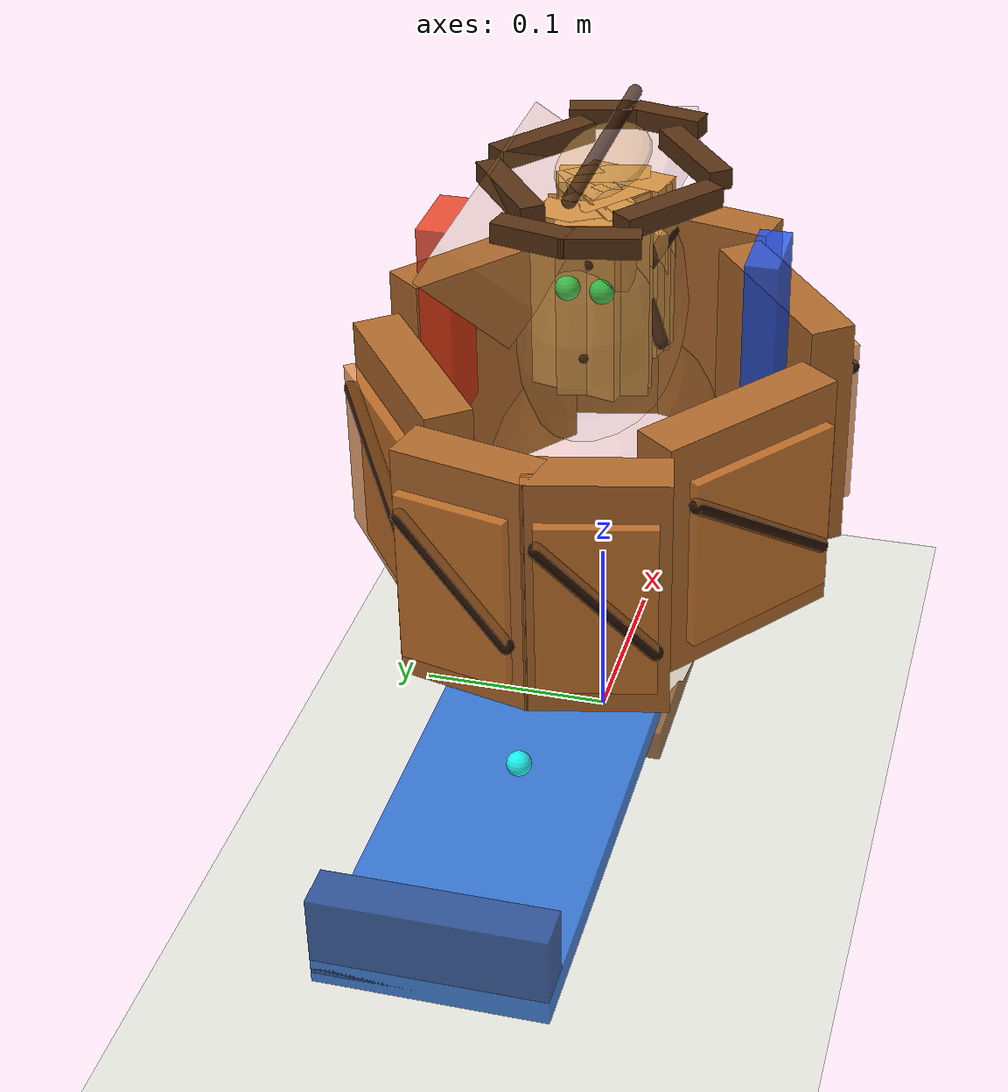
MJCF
<mujoco model="shape_coupled_sack_core_underfilled">
  <compiler angle="degree" autolimits="true" />
  <option timestep="0.001000" gravity="0 0 -9.81" integrator="implicitfast" solver="Newton" iterations="100" ls_iterations="24" jacobian="sparse" cone="elliptic" impratio="4" />
  <size nconmax="900" njmax="1800" />
  <visual>
    <global offwidth="1280" offheight="820" />
  </visual>
  <worldbody>
    <geom friction="1.5 0.05 0.005" condim="4" solref="0.026 1" solimp="0.82 0.96 0.001" name="floor" type="plane" pos="0 0 0" size="2.0 2.0 0.05" rgba="0.91 0.91 0.89 1" />
    <light name="key_light" pos="0.4 -0.7 1.5" dir="-0.3 0.4 -1" />
    <camera name="front" pos="0.80 0 0.38" xyaxes="0 1 0 -0.24 0 0.97" />
    <camera name="side" pos="0 -0.78 0.38" xyaxes="1 0 0 0 0.24 0.97" />
    <camera name="overview" pos="0.85 -0.85 0.72" xyaxes="0.72 0.69 0 -0.34 0.35 0.87" />
    <body name="gripper_left_mocap" mocap="true" pos="0 -0.080000 0.230">
      <geom friction="2.3 0.12 0.010" condim="4" solref="0.030 1" solimp="0.78 0.94 0.001" name="gripper_left_mocap_pad" type="box" size="0.020 0.008 0.055" rgba="0.15 0.35 0.95 0.85" />
      <site name="gripper_left_mocap_site" pos="0 0 0" size="0.006" rgba="0.15 0.35 0.95 0.85" />
    </body>
    <body name="gripper_right_mocap" mocap="true" pos="0 0.080000 0.230">
      <geom friction="2.3 0.12 0.010" condim="4" solref="0.030 1" solimp="0.78 0.94 0.001" name="gripper_right_mocap_pad" type="box" size="0.020 0.008 0.055" rgba="0.95 0.25 0.12 0.85" />
      <site name="gripper_right_mocap_site" pos="0 0 0" size="0.006" rgba="0.95 0.25 0.12 0.85" />
    </body>
    <body name="gripper_center_mocap" mocap="true" pos="0 0 0.230">
      <site name="gripper_center_site" pos="0 0 0" size="0.006" rgba="1 1 0 0.8" />
    </body>
    <body name="scoop_mocap" mocap="true" pos="-0.20 0 0.080">
      <geom friction="1.7 0.08 0.006" condim="4" solref="0.035 1" solimp="0.76 0.94 0.001" name="scoop_plate" type="box" size="0.105 0.052 0.006" rgba="0.12 0.42 0.86 0.82" />
      <geom friction="1.7 0.08 0.006" condim="4" solref="0.035 1" solimp="0.76 0.94 0.001" name="scoop_back_lip" type="box" pos="-0.095 0 0.019" size="0.010 0.052 0.020" rgba="0.08 0.25 0.58 0.82" />
      <site name="scoop_support_site" pos="0.035 0 0.010" size="0.006" rgba="0 1 1 0.85" />
    </body>
    <body name="bag_frame" pos="0 0 0.188">
      <freejoint name="bag_frame_freejoint" />
      <site name="bag_frame_origin" pos="0 0 0" size="0.006" rgba="1 0 0 0.7" />
      <body name="seam_band_00" pos="0.070060 0.015585 0.126000" euler="0 0 102.541136">
        <geom friction="1.35 0.08 0.006" condim="4" solref="0.026 1" solimp="0.82 0.96 0.001" name="seam_band_00_geom" type="box" size="0.018501 0.006000 0.005000" mass="0.016" rgba="0.35 0.20 0.08 0.90" />
        <site name="grasp_seam_00" pos="0 0 0" size="0.005" rgba="1 0.55 0.12 0.90" />
      </body>
      <body name="seam_band_01" pos="0.029020 0.037625 0.126000" euler="0 0 142.357206">
        <geom friction="1.35 0.08 0.006" condim="4" solref="0.026 1" solimp="0.82 0.96 0.001" name="seam_band_01_geom" type="box" size="0.027945 0.006000 0.005000" mass="0.016" rgba="0.35 0.20 0.08 0.90" />
        <site name="grasp_seam_01" pos="0 0 0" size="0.005" rgba="1 0.55 0.12 0.90" />
      </body>
      <body name="seam_band_02" pos="-0.029020 0.037625 0.126000" euler="0 0 217.642794">
        <geom friction="1.35 0.08 0.006" condim="4" solref="0.026 1" solimp="0.82 0.96 0.001" name="seam_band_02_geom" type="box" size="0.027945 0.006000 0.005000" mass="0.016" rgba="0.35 0.20 0.08 0.90" />
        <site name="grasp_seam_02" pos="0 0 0" size="0.005" rgba="1 0.55 0.12 0.90" />
      </body>
      <body name="seam_band_03" pos="-0.070060 0.015585 0.126000" euler="0 0 257.458864">
        <geom friction="1.35 0.08 0.006" condim="4" solref="0.026 1" solimp="0.82 0.96 0.001" name="seam_band_03_geom" type="box" size="0.018501 0.006000 0.005000" mass="0.016" rgba="0.35 0.20 0.08 0.90" />
        <site name="grasp_seam_03" pos="0 0 0" size="0.005" rgba="1 0.55 0.12 0.90" />
      </body>
      <body name="seam_band_04" pos="-0.070060 -0.015585 0.126000" euler="0 0 -77.458864">
        <geom friction="1.35 0.08 0.006" condim="4" solref="0.026 1" solimp="0.82 0.96 0.001" name="seam_band_04_geom" type="box" size="0.018501 0.006000 0.005000" mass="0.016" rgba="0.35 0.20 0.08 0.90" />
        <site name="grasp_seam_04" pos="0 0 0" size="0.005" rgba="1 0.55 0.12 0.90" />
      </body>
      <body name="seam_band_05" pos="-0.029020 -0.037625 0.126000" euler="0 0 -37.642794">
        <geom friction="1.35 0.08 0.006" condim="4" solref="0.026 1" solimp="0.82 0.96 0.001" name="seam_band_05_geom" type="box" size="0.027945 0.006000 0.005000" mass="0.016" rgba="0.35 0.20 0.08 0.90" />
        <site name="grasp_seam_05" pos="0 0 0" size="0.005" rgba="1 0.55 0.12 0.90" />
      </body>
      <body name="seam_band_06" pos="0.029020 -0.037625 0.126000" euler="0 0 37.642794">
        <geom friction="1.35 0.08 0.006" condim="4" solref="0.026 1" solimp="0.82 0.96 0.001" name="seam_band_06_geom" type="box" size="0.027945 0.006000 0.005000" mass="0.016" rgba="0.35 0.20 0.08 0.90" />
        <site name="grasp_seam_06" pos="0 0 0" size="0.005" rgba="1 0.55 0.12 0.90" />
      </body>
      <body name="seam_band_07" pos="0.070060 -0.015585 0.126000" euler="0 0 77.458864">
        <geom friction="1.35 0.08 0.006" condim="4" solref="0.026 1" solimp="0.82 0.96 0.001" name="seam_band_07_geom" type="box" size="0.018501 0.006000 0.005000" mass="0.016" rgba="0.35 0.20 0.08 0.90" />
        <site name="grasp_seam_07" pos="0 0 0" size="0.005" rgba="1 0.55 0.12 0.90" />
      </body>
      <body name="shoulder_panel_00" pos="0.070060 0.015585 0.116000" euler="0 0 102.541136">
        <joint name="shoulder_panel_00_hinge" type="hinge" axis="1 0 0" limited="true" range="-44 52" damping="10.500" stiffness="1.100" />
        <geom friction="1.35 0.08 0.006" condim="4" solref="0.026 1" solimp="0.82 0.96 0.001" name="shoulder_panel_00_geom" type="box" pos="0 0.048000 -0.045000" size="0.022044 0.010000 0.045000" mass="0.030" rgba="0.84 0.58 0.27 1.00" />
        <geom friction="1.35 0.08 0.006" condim="4" solref="0.026 1" solimp="0.82 0.96 0.001" name="shoulder_panel_00_shape_cue" type="capsule" fromto="-0.017714 0.066000 -0.020000 0.017714 0.066000 -0.070000" size="0.0035" mass="0.001" rgba="0.18 0.08 0.02 0.95" contype="0" conaffinity="0" />
        <geom friction="1.35 0.08 0.006" condim="4" solref="0.026 1" solimp="0.82 0.96 0.001" name="shoulder_panel_00_outer_cloth_patch" type="box" pos="0 0.066000 -0.045000" size="0.018107 0.002500 0.032400" mass="0.001" rgba="0.96 0.70 0.34 0.72" contype="0" conaffinity="0" />
        <site name="grasp_shoulder_00" pos="0 0.033600 -0.031500" size="0.006" rgba="0.10 0.75 0.25 0.90" />
      </body>
      <body name="shoulder_panel_01" pos="0.029020 0.037625 0.116000" euler="0 0 142.357206">
        <joint name="shoulder_panel_01_hinge" type="hinge" axis="1 0 0" limited="true" range="-44 52" damping="10.500" stiffness="1.100" />
        <geom friction="1.35 0.08 0.006" condim="4" solref="0.026 1" solimp="0.82 0.96 0.001" name="shoulder_panel_01_geom" type="box" pos="0 0.048000 -0.045000" size="0.033296 0.010000 0.045000" mass="0.030" rgba="0.84 0.58 0.27 1.00" />
        <geom friction="1.35 0.08 0.006" condim="4" solref="0.026 1" solimp="0.82 0.96 0.001" name="shoulder_panel_01_shape_cue" type="capsule" fromto="-0.026756 0.066000 -0.020000 0.026756 0.066000 -0.070000" size="0.0035" mass="0.001" rgba="0.18 0.08 0.02 0.95" contype="0" conaffinity="0" />
        <geom friction="1.35 0.08 0.006" condim="4" solref="0.026 1" solimp="0.82 0.96 0.001" name="shoulder_panel_01_outer_cloth_patch" type="box" pos="0 0.066000 -0.045000" size="0.027351 0.002500 0.032400" mass="0.001" rgba="0.96 0.70 0.34 0.72" contype="0" conaffinity="0" />
        <site name="grasp_shoulder_01" pos="0 0.033600 -0.031500" size="0.006" rgba="0.10 0.75 0.25 0.90" />
      </body>
      <body name="shoulder_panel_02" pos="-0.029020 0.037625 0.116000" euler="0 0 217.642794">
        <joint name="shoulder_panel_02_hinge" type="hinge" axis="1 0 0" limited="true" range="-44 52" damping="10.500" stiffness="1.100" />
        <geom friction="1.35 0.08 0.006" condim="4" solref="0.026 1" solimp="0.82 0.96 0.001" name="shoulder_panel_02_geom" type="box" pos="0 0.048000 -0.045000" size="0.033296 0.010000 0.045000" mass="0.030" rgba="0.84 0.58 0.27 1.00" />
        <geom friction="1.35 0.08 0.006" condim="4" solref="0.026 1" solimp="0.82 0.96 0.001" name="shoulder_panel_02_shape_cue" type="capsule" fromto="-0.026756 0.066000 -0.020000 0.026756 0.066000 -0.070000" size="0.0035" mass="0.001" rgba="0.18 0.08 0.02 0.95" contype="0" conaffinity="0" />
        <geom friction="1.35 0.08 0.006" condim="4" solref="0.026 1" solimp="0.82 0.96 0.001" name="shoulder_panel_02_outer_cloth_patch" type="box" pos="0 0.066000 -0.045000" size="0.027351 0.002500 0.032400" mass="0.001" rgba="0.96 0.70 0.34 0.72" contype="0" conaffinity="0" />
        <site name="grasp_shoulder_02" pos="0 0.033600 -0.031500" size="0.006" rgba="0.10 0.75 0.25 0.90" />
      </body>
      <body name="shoulder_panel_03" pos="-0.070060 0.015585 0.116000" euler="0 0 257.458864">
        <joint name="shoulder_panel_03_hinge" type="hinge" axis="1 0 0" limited="true" range="-44 52" damping="10.500" stiffness="1.100" />
        <geom friction="1.35 0.08 0.006" condim="4" solref="0.026 1" solimp="0.82 0.96 0.001" name="shoulder_panel_03_geom" type="box" pos="0 0.048000 -0.045000" size="0.022044 0.010000 0.045000" mass="0.030" rgba="0.84 0.58 0.27 1.00" />
        <geom friction="1.35 0.08 0.006" condim="4" solref="0.026 1" solimp="0.82 0.96 0.001" name="shoulder_panel_03_shape_cue" type="capsule" fromto="-0.017714 0.066000 -0.020000 0.017714 0.066000 -0.070000" size="0.0035" mass="0.001" rgba="0.18 0.08 0.02 0.95" contype="0" conaffinity="0" />
        <geom friction="1.35 0.08 0.006" condim="4" solref="0.026 1" solimp="0.82 0.96 0.001" name="shoulder_panel_03_outer_cloth_patch" type="box" pos="0 0.066000 -0.045000" size="0.018107 0.002500 0.032400" mass="0.001" rgba="0.96 0.70 0.34 0.72" contype="0" conaffinity="0" />
        <site name="grasp_shoulder_03" pos="0 0.033600 -0.031500" size="0.006" rgba="0.10 0.75 0.25 0.90" />
      </body>
      <body name="shoulder_panel_04" pos="-0.070060 -0.015585 0.116000" euler="0 0 -77.458864">
        <joint name="shoulder_panel_04_hinge" type="hinge" axis="1 0 0" limited="true" range="-44 52" damping="10.500" stiffness="1.100" />
        <geom friction="1.35 0.08 0.006" condim="4" solref="0.026 1" solimp="0.82 0.96 0.001" name="shoulder_panel_04_geom" type="box" pos="0 0.048000 -0.045000" size="0.022044 0.010000 0.045000" mass="0.030" rgba="0.84 0.58 0.27 1.00" />
        <geom friction="1.35 0.08 0.006" condim="4" solref="0.026 1" solimp="0.82 0.96 0.001" name="shoulder_panel_04_shape_cue" type="capsule" fromto="-0.017714 0.066000 -0.020000 0.017714 0.066000 -0.070000" size="0.0035" mass="0.001" rgba="0.18 0.08 0.02 0.95" contype="0" conaffinity="0" />
        <geom friction="1.35 0.08 0.006" condim="4" solref="0.026 1" solimp="0.82 0.96 0.001" name="shoulder_panel_04_outer_cloth_patch" type="box" pos="0 0.066000 -0.045000" size="0.018107 0.002500 0.032400" mass="0.001" rgba="0.96 0.70 0.34 0.72" contype="0" conaffinity="0" />
        <site name="grasp_shoulder_04" pos="0 0.033600 -0.031500" size="0.006" rgba="0.10 0.75 0.25 0.90" />
      </body>
      <body name="shoulder_panel_05" pos="-0.029020 -0.037625 0.116000" euler="0 0 -37.642794">
        <joint name="shoulder_panel_05_hinge" type="hinge" axis="1 0 0" limited="true" range="-44 52" damping="10.500" stiffness="1.100" />
        <geom friction="1.35 0.08 0.006" condim="4" solref="0.026 1" solimp="0.82 0.96 0.001" name="shoulder_panel_05_geom" type="box" pos="0 0.048000 -0.045000" size="0.033296 0.010000 0.045000" mass="0.030" rgba="0.84 0.58 0.27 1.00" />
        <geom friction="1.35 0.08 0.006" condim="4" solref="0.026 1" solimp="0.82 0.96 0.001" name="shoulder_panel_05_shape_cue" type="capsule" fromto="-0.026756 0.066000 -0.020000 0.026756 0.066000 -0.070000" size="0.0035" mass="0.001" rgba="0.18 0.08 0.02 0.95" contype="0" conaffinity="0" />
        <geom friction="1.35 0.08 0.006" condim="4" solref="0.026 1" solimp="0.82 0.96 0.001" name="shoulder_panel_05_outer_cloth_patch" type="box" pos="0 0.066000 -0.045000" size="0.027351 0.002500 0.032400" mass="0.001" rgba="0.96 0.70 0.34 0.72" contype="0" conaffinity="0" />
        <site name="grasp_shoulder_05" pos="0 0.033600 -0.031500" size="0.006" rgba="0.10 0.75 0.25 0.90" />
      </body>
      <body name="shoulder_panel_06" pos="0.029020 -0.037625 0.116000" euler="0 0 37.642794">
        <joint name="shoulder_panel_06_hinge" type="hinge" axis="1 0 0" limited="true" range="-44 52" damping="10.500" stiffness="1.100" />
        <geom friction="1.35 0.08 0.006" condim="4" solref="0.026 1" solimp="0.82 0.96 0.001" name="shoulder_panel_06_geom" type="box" pos="0 0.048000 -0.045000" size="0.033296 0.010000 0.045000" mass="0.030" rgba="0.84 0.58 0.27 1.00" />
        <geom friction="1.35 0.08 0.006" condim="4" solref="0.026 1" solimp="0.82 0.96 0.001" name="shoulder_panel_06_shape_cue" type="capsule" fromto="-0.026756 0.066000 -0.020000 0.026756 0.066000 -0.070000" size="0.0035" mass="0.001" rgba="0.18 0.08 0.02 0.95" contype="0" conaffinity="0" />
        <geom friction="1.35 0.08 0.006" condim="4" solref="0.026 1" solimp="0.82 0.96 0.001" name="shoulder_panel_06_outer_cloth_patch" type="box" pos="0 0.066000 -0.045000" size="0.027351 0.002500 0.032400" mass="0.001" rgba="0.96 0.70 0.34 0.72" contype="0" conaffinity="0" />
        <site name="grasp_shoulder_06" pos="0 0.033600 -0.031500" size="0.006" rgba="0.10 0.75 0.25 0.90" />
      </body>
      <body name="shoulder_panel_07" pos="0.070060 -0.015585 0.116000" euler="0 0 77.458864">
        <joint name="shoulder_panel_07_hinge" type="hinge" axis="1 0 0" limited="true" range="-44 52" damping="10.500" stiffness="1.100" />
        <geom friction="1.35 0.08 0.006" condim="4" solref="0.026 1" solimp="0.82 0.96 0.001" name="shoulder_panel_07_geom" type="box" pos="0 0.048000 -0.045000" size="0.022044 0.010000 0.045000" mass="0.030" rgba="0.84 0.58 0.27 1.00" />
        <geom friction="1.35 0.08 0.006" condim="4" solref="0.026 1" solimp="0.82 0.96 0.001" name="shoulder_panel_07_shape_cue" type="capsule" fromto="-0.017714 0.066000 -0.020000 0.017714 0.066000 -0.070000" size="0.0035" mass="0.001" rgba="0.18 0.08 0.02 0.95" contype="0" conaffinity="0" />
        <geom friction="1.35 0.08 0.006" condim="4" solref="0.026 1" solimp="0.82 0.96 0.001" name="shoulder_panel_07_outer_cloth_patch" type="box" pos="0 0.066000 -0.045000" size="0.018107 0.002500 0.032400" mass="0.001" rgba="0.96 0.70 0.34 0.72" contype="0" conaffinity="0" />
        <site name="grasp_shoulder_07" pos="0 0.033600 -0.031500" size="0.006" rgba="0.10 0.75 0.25 0.90" />
      </body>
      <body name="belly_panel_00" pos="0.103246 0.022967 0.046800" euler="0 0 102.541136">
        <joint name="belly_panel_00_hinge" type="hinge" axis="1 0 0" limited="true" range="-54 64" damping="11.000" stiffness="1.700" />
        <geom friction="1.35 0.08 0.006" condim="4" solref="0.026 1" solimp="0.82 0.96 0.001" name="belly_panel_00_geom" type="box" pos="0 -0.030000 -0.062000" size="0.033645 0.012000 0.062000" mass="0.038" rgba="0.70 0.42 0.18 1.00" />
        <geom friction="1.35 0.08 0.006" condim="4" solref="0.026 1" solimp="0.82 0.96 0.001" name="belly_panel_00_shape_cue" type="capsule" fromto="-0.026684 -0.048000 -0.030000 0.026684 -0.048000 -0.085000" size="0.0038" mass="0.001" rgba="0.16 0.07 0.02 0.96" contype="0" conaffinity="0" />
        <geom friction="1.35 0.08 0.006" condim="4" solref="0.026 1" solimp="0.82 0.96 0.001" name="belly_panel_00_outer_cloth_patch" type="box" pos="0 -0.048000 -0.062000" size="0.027844 0.002800 0.044640" mass="0.001" rgba="0.88 0.54 0.24 0.76" contype="0" conaffinity="0" />
      </body>
      <body name="belly_panel_01" pos="0.042766 0.055447 0.046800" euler="0 0 142.357206">
        <joint name="belly_panel_01_hinge" type="hinge" axis="1 0 0" limited="true" range="-54 64" damping="11.000" stiffness="1.700" />
        <geom friction="1.35 0.08 0.006" condim="4" solref="0.026 1" solimp="0.82 0.96 0.001" name="belly_panel_01_geom" type="box" pos="0 -0.030000 -0.062000" size="0.050821 0.012000 0.062000" mass="0.038" rgba="0.70 0.42 0.18 1.00" />
        <geom friction="1.35 0.08 0.006" condim="4" solref="0.026 1" solimp="0.82 0.96 0.001" name="belly_panel_01_shape_cue" type="capsule" fromto="-0.040306 -0.048000 -0.030000 0.040306 -0.048000 -0.085000" size="0.0038" mass="0.001" rgba="0.16 0.07 0.02 0.96" contype="0" conaffinity="0" />
        <geom friction="1.35 0.08 0.006" condim="4" solref="0.026 1" solimp="0.82 0.96 0.001" name="belly_panel_01_outer_cloth_patch" type="box" pos="0 -0.048000 -0.062000" size="0.042059 0.002800 0.044640" mass="0.001" rgba="0.88 0.54 0.24 0.76" contype="0" conaffinity="0" />
      </body>
      <body name="belly_panel_02" pos="-0.042766 0.055447 0.046800" euler="0 0 217.642794">
        <joint name="belly_panel_02_hinge" type="hinge" axis="1 0 0" limited="true" range="-54 64" damping="11.000" stiffness="1.700" />
        <geom friction="1.35 0.08 0.006" condim="4" solref="0.026 1" solimp="0.82 0.96 0.001" name="belly_panel_02_geom" type="box" pos="0 -0.030000 -0.062000" size="0.050821 0.012000 0.062000" mass="0.038" rgba="0.70 0.42 0.18 1.00" />
        <geom friction="1.35 0.08 0.006" condim="4" solref="0.026 1" solimp="0.82 0.96 0.001" name="belly_panel_02_shape_cue" type="capsule" fromto="-0.040306 -0.048000 -0.030000 0.040306 -0.048000 -0.085000" size="0.0038" mass="0.001" rgba="0.16 0.07 0.02 0.96" contype="0" conaffinity="0" />
        <geom friction="1.35 0.08 0.006" condim="4" solref="0.026 1" solimp="0.82 0.96 0.001" name="belly_panel_02_outer_cloth_patch" type="box" pos="0 -0.048000 -0.062000" size="0.042059 0.002800 0.044640" mass="0.001" rgba="0.88 0.54 0.24 0.76" contype="0" conaffinity="0" />
      </body>
      <body name="belly_panel_03" pos="-0.103246 0.022967 0.046800" euler="0 0 257.458864">
        <joint name="belly_panel_03_hinge" type="hinge" axis="1 0 0" limited="true" range="-54 64" damping="11.000" stiffness="1.700" />
        <geom friction="1.35 0.08 0.006" condim="4" solref="0.026 1" solimp="0.82 0.96 0.001" name="belly_panel_03_geom" type="box" pos="0 -0.030000 -0.062000" size="0.033645 0.012000 0.062000" mass="0.038" rgba="0.70 0.42 0.18 1.00" />
        <geom friction="1.35 0.08 0.006" condim="4" solref="0.026 1" solimp="0.82 0.96 0.001" name="belly_panel_03_shape_cue" type="capsule" fromto="-0.026684 -0.048000 -0.030000 0.026684 -0.048000 -0.085000" size="0.0038" mass="0.001" rgba="0.16 0.07 0.02 0.96" contype="0" conaffinity="0" />
        <geom friction="1.35 0.08 0.006" condim="4" solref="0.026 1" solimp="0.82 0.96 0.001" name="belly_panel_03_outer_cloth_patch" type="box" pos="0 -0.048000 -0.062000" size="0.027844 0.002800 0.044640" mass="0.001" rgba="0.88 0.54 0.24 0.76" contype="0" conaffinity="0" />
      </body>
      <body name="belly_panel_04" pos="-0.103246 -0.022967 0.046800" euler="0 0 -77.458864">
        <joint name="belly_panel_04_hinge" type="hinge" axis="1 0 0" limited="true" range="-54 64" damping="11.000" stiffness="1.700" />
        <geom friction="1.35 0.08 0.006" condim="4" solref="0.026 1" solimp="0.82 0.96 0.001" name="belly_panel_04_geom" type="box" pos="0 -0.030000 -0.062000" size="0.033645 0.012000 0.062000" mass="0.038" rgba="0.70 0.42 0.18 1.00" />
        <geom friction="1.35 0.08 0.006" condim="4" solref="0.026 1" solimp="0.82 0.96 0.001" name="belly_panel_04_shape_cue" type="capsule" fromto="-0.026684 -0.048000 -0.030000 0.026684 -0.048000 -0.085000" size="0.0038" mass="0.001" rgba="0.16 0.07 0.02 0.96" contype="0" conaffinity="0" />
        <geom friction="1.35 0.08 0.006" condim="4" solref="0.026 1" solimp="0.82 0.96 0.001" name="belly_panel_04_outer_cloth_patch" type="box" pos="0 -0.048000 -0.062000" size="0.027844 0.002800 0.044640" mass="0.001" rgba="0.88 0.54 0.24 0.76" contype="0" conaffinity="0" />
      </body>
      <body name="belly_panel_05" pos="-0.042766 -0.055447 0.046800" euler="0 0 -37.642794">
        <joint name="belly_panel_05_hinge" type="hinge" axis="1 0 0" limited="true" range="-54 64" damping="11.000" stiffness="1.700" />
        <geom friction="1.35 0.08 0.006" condim="4" solref="0.026 1" solimp="0.82 0.96 0.001" name="belly_panel_05_geom" type="box" pos="0 -0.030000 -0.062000" size="0.050821 0.012000 0.062000" mass="0.038" rgba="0.70 0.42 0.18 1.00" />
        <geom friction="1.35 0.08 0.006" condim="4" solref="0.026 1" solimp="0.82 0.96 0.001" name="belly_panel_05_shape_cue" type="capsule" fromto="-0.040306 -0.048000 -0.030000 0.040306 -0.048000 -0.085000" size="0.0038" mass="0.001" rgba="0.16 0.07 0.02 0.96" contype="0" conaffinity="0" />
        <geom friction="1.35 0.08 0.006" condim="4" solref="0.026 1" solimp="0.82 0.96 0.001" name="belly_panel_05_outer_cloth_patch" type="box" pos="0 -0.048000 -0.062000" size="0.042059 0.002800 0.044640" mass="0.001" rgba="0.88 0.54 0.24 0.76" contype="0" conaffinity="0" />
      </body>
      <body name="belly_panel_06" pos="0.042766 -0.055447 0.046800" euler="0 0 37.642794">
        <joint name="belly_panel_06_hinge" type="hinge" axis="1 0 0" limited="true" range="-54 64" damping="11.000" stiffness="1.700" />
        <geom friction="1.35 0.08 0.006" condim="4" solref="0.026 1" solimp="0.82 0.96 0.001" name="belly_panel_06_geom" type="box" pos="0 -0.030000 -0.062000" size="0.050821 0.012000 0.062000" mass="0.038" rgba="0.70 0.42 0.18 1.00" />
        <geom friction="1.35 0.08 0.006" condim="4" solref="0.026 1" solimp="0.82 0.96 0.001" name="belly_panel_06_shape_cue" type="capsule" fromto="-0.040306 -0.048000 -0.030000 0.040306 -0.048000 -0.085000" size="0.0038" mass="0.001" rgba="0.16 0.07 0.02 0.96" contype="0" conaffinity="0" />
        <geom friction="1.35 0.08 0.006" condim="4" solref="0.026 1" solimp="0.82 0.96 0.001" name="belly_panel_06_outer_cloth_patch" type="box" pos="0 -0.048000 -0.062000" size="0.042059 0.002800 0.044640" mass="0.001" rgba="0.88 0.54 0.24 0.76" contype="0" conaffinity="0" />
      </body>
      <body name="belly_panel_07" pos="0.103246 -0.022967 0.046800" euler="0 0 77.458864">
        <joint name="belly_panel_07_hinge" type="hinge" axis="1 0 0" limited="true" range="-54 64" damping="11.000" stiffness="1.700" />
        <geom friction="1.35 0.08 0.006" condim="4" solref="0.026 1" solimp="0.82 0.96 0.001" name="belly_panel_07_geom" type="box" pos="0 -0.030000 -0.062000" size="0.033645 0.012000 0.062000" mass="0.038" rgba="0.70 0.42 0.18 1.00" />
        <geom friction="1.35 0.08 0.006" condim="4" solref="0.026 1" solimp="0.82 0.96 0.001" name="belly_panel_07_shape_cue" type="capsule" fromto="-0.026684 -0.048000 -0.030000 0.026684 -0.048000 -0.085000" size="0.0038" mass="0.001" rgba="0.16 0.07 0.02 0.96" contype="0" conaffinity="0" />
        <geom friction="1.35 0.08 0.006" condim="4" solref="0.026 1" solimp="0.82 0.96 0.001" name="belly_panel_07_outer_cloth_patch" type="box" pos="0 -0.048000 -0.062000" size="0.027844 0.002800 0.044640" mass="0.001" rgba="0.88 0.54 0.24 0.76" contype="0" conaffinity="0" />
      </body>
      <body name="bottom_sling" pos="0 0 -0.141000">
        <joint name="bottom_sling_sag" type="slide" axis="0 0 1" limited="true" range="-0.020000 0.015000" damping="12.000" stiffness="2.000" />
        <geom friction="1.35 0.08 0.006" condim="4" solref="0.026 1" solimp="0.82 0.96 0.001" name="bottom_sling_pad" type="box" size="0.086 0.050 0.008" mass="0.070" rgba="0.55 0.33 0.14 0.82" />
        <site name="bottom_sling_site" pos="0 0 0" size="0.005" rgba="0.8 0.35 0.08 0.8" />
      </body>
      <body name="fold_root_flap_1" pos="-0.018000 0.030000 0.138000" euler="-58.000000 0 0">
        <joint name="fold_root_flap_1_hinge" type="hinge" axis="1 0 0" limited="true" range="-125 22" damping="8.0" stiffness="2.8" />
        <geom friction="1.35 0.08 0.006" condim="4" solref="0.026 1" solimp="0.82 0.96 0.001" name="fold_root_flap_1_geom" type="box" pos="0 0.028 -0.012" size="0.081697 0.012000 0.026000" mass="0.001" rgba="0.70 0.50 0.27 0.04" contype="0" conaffinity="0" />
        <site name="grasp_fold_1" pos="0 0.028 -0.012" size="0.005" rgba="0.1 0.2 1 0.40" />
      </body>
      <body name="fold_root_flap_2" pos="0.034000 0.018000 0.128000" euler="-95.000000 0 0">
        <joint name="fold_root_flap_2_hinge" type="hinge" axis="1 0 0" limited="true" range="-125 22" damping="8.0" stiffness="2.8" />
        <geom friction="1.35 0.08 0.006" condim="4" solref="0.026 1" solimp="0.82 0.96 0.001" name="fold_root_flap_2_geom" type="box" pos="0 0.028 -0.012" size="0.081697 0.012000 0.026000" mass="0.001" rgba="0.70 0.50 0.27 0.04" contype="0" conaffinity="0" />
        <site name="grasp_fold_2" pos="0 0.028 -0.012" size="0.005" rgba="0.1 0.2 1 0.40" />
      </body>
      <body name="payload_main" pos="0.000000 0.000000 -0.135000">
        <joint name="payload_main_x" type="slide" axis="1 0 0" limited="true" range="-0.028 0.028" damping="20" stiffness="3.0" />
        <joint name="payload_main_y" type="slide" axis="0 1 0" limited="true" range="-0.024 0.024" damping="20" stiffness="3.0" />
        <joint name="payload_main_z" type="slide" axis="0 0 1" limited="true" range="-0.020 0.020" damping="20" stiffness="3.0" />
        <geom friction="1.35 0.08 0.006" condim="4" solref="0.026 1" solimp="0.82 0.96 0.001" name="payload_main_geom" type="ellipsoid" size="0.070000 0.044000 0.035000" mass="0.3400" rgba="0.42 0.22 0.10 0.72" />
      </body>
      <body name="visual_upper_hull" pos="0 0 0.052">
        <geom friction="1.35 0.08 0.006" condim="4" solref="0.026 1" solimp="0.82 0.96 0.001" name="visual_upper_hull_geom" type="ellipsoid" size="0.075600 0.039440 0.062400" rgba="0.78 0.62 0.38 0.13" contype="0" conaffinity="0" mass="0.001" />
      </body>
      <body name="visual_lower_hull" pos="0 0 -0.077000">
        <geom friction="1.35 0.08 0.006" condim="4" solref="0.026 1" solimp="0.82 0.96 0.001" name="visual_lower_hull_geom" type="ellipsoid" size="0.124200 0.064960 0.108520" rgba="0.72 0.50 0.25 0.18" contype="0" conaffinity="0" mass="0.001" />
      </body>
      <body name="sealed_top_cap_visual" pos="0 0 0.134000">
        <geom friction="1.35 0.08 0.006" condim="4" solref="0.026 1" solimp="0.82 0.96 0.001" name="sealed_top_cap_visual_geom" type="ellipsoid" size="0.044323 0.021158 0.006000" rgba="0.82 0.64 0.36 0.45" contype="0" conaffinity="0" mass="0.001" />
      </body>
      <body name="sealed_top_stitch_visual" pos="0 0 0.142000">
        <geom friction="1.35 0.08 0.006" condim="4" solref="0.026 1" solimp="0.82 0.96 0.001" name="sealed_top_stitch_visual_geom" type="capsule" fromto="-0.064 0 0 0.064 0 0" size="0.0035" rgba="0.22 0.12 0.05 0.75" contype="0" conaffinity="0" mass="0.001" />
      </body>
      <body name="upper_empty_wrinkle_visual" pos="0 0 0.070">
        <geom friction="1.35 0.08 0.006" condim="4" solref="0.026 1" solimp="0.82 0.96 0.001" name="upper_empty_wrinkle_0" type="capsule" fromto="-0.040 -0.022000 0 0.040 -0.009900 -0.003" size="0.0024" rgba="0.25 0.13 0.05 0.55" contype="0" conaffinity="0" mass="0.001" />
        <geom friction="1.35 0.08 0.006" condim="4" solref="0.026 1" solimp="0.82 0.96 0.001" name="upper_empty_wrinkle_1" type="capsule" fromto="-0.040 0.000000 0 0.040 0.000000 -0.003" size="0.0024" rgba="0.25 0.13 0.05 0.55" contype="0" conaffinity="0" mass="0.001" />
        <geom friction="1.35 0.08 0.006" condim="4" solref="0.026 1" solimp="0.82 0.96 0.001" name="upper_empty_wrinkle_2" type="capsule" fromto="-0.040 0.022000 0 0.040 0.009900 -0.003" size="0.0024" rgba="0.25 0.13 0.05 0.55" contype="0" conaffinity="0" mass="0.001" />
      </body>
    </body>
  </worldbody>
</mujoco>
